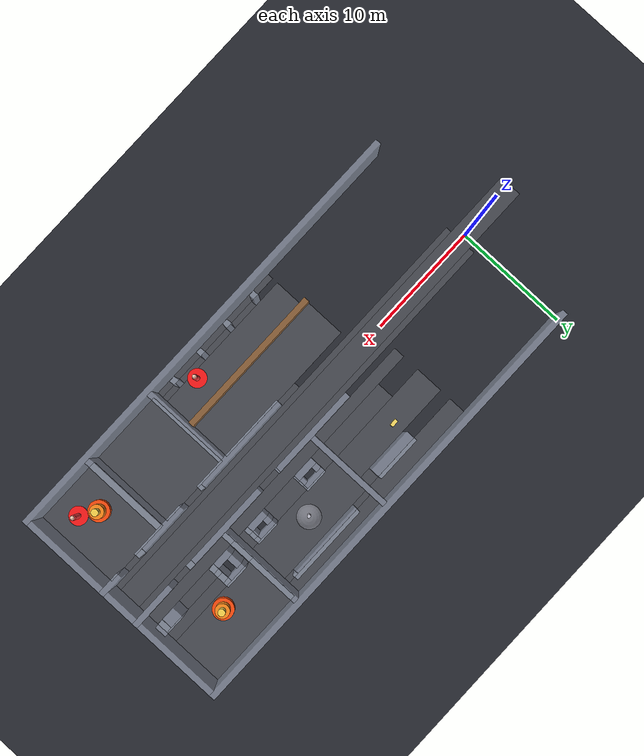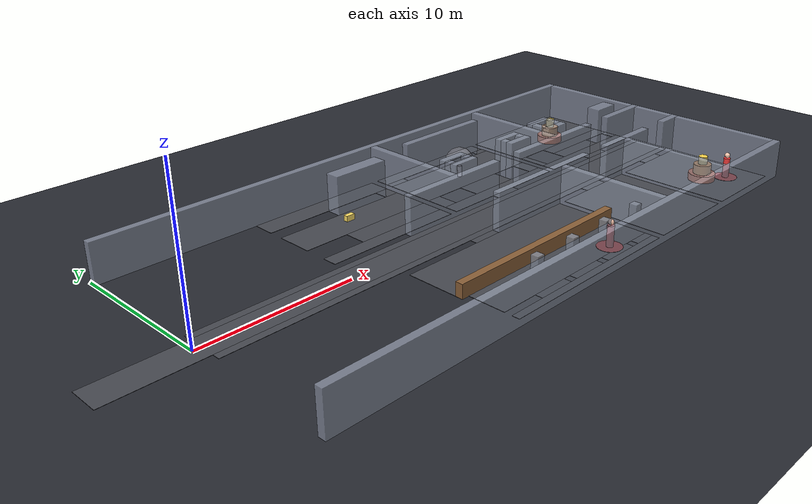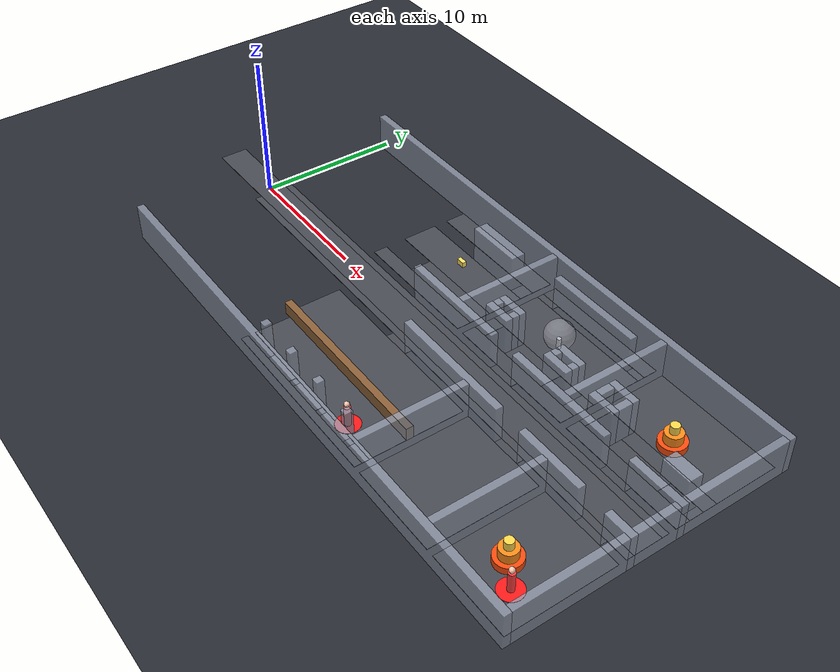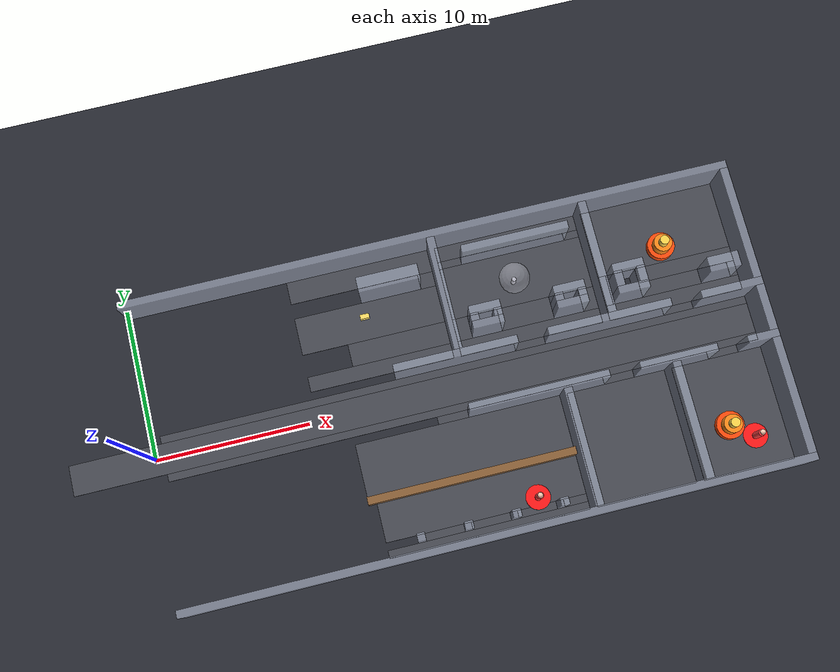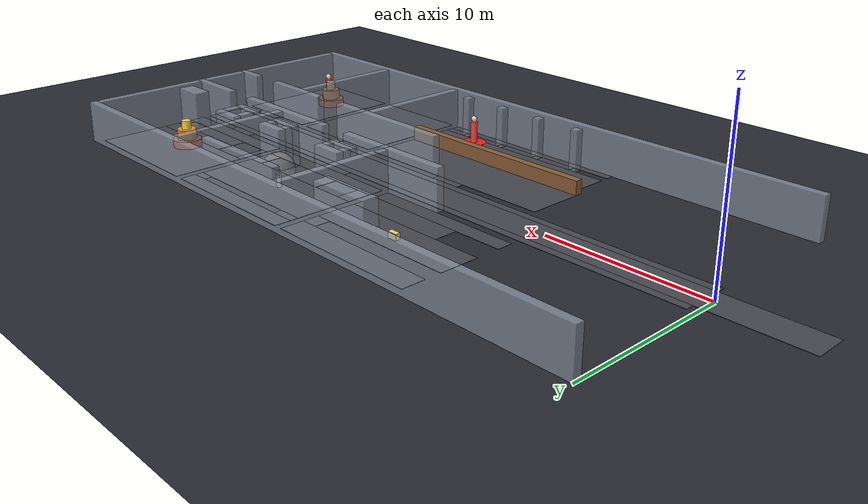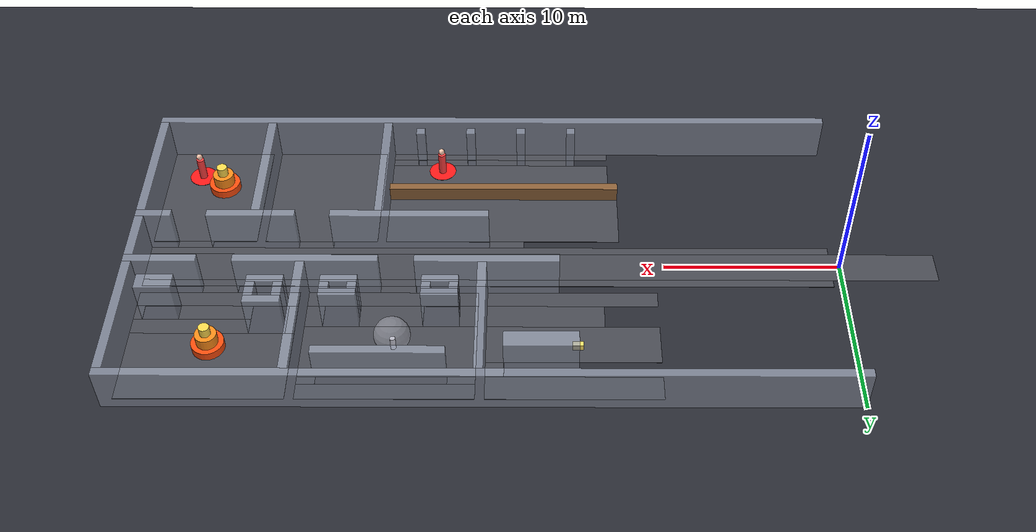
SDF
<sdf version="1.9">
 <world name="living_map_fire">
  <model name="ground">
   <static>true</static>
   <link name="l">
    <collision name="c"><geometry><plane><normal>0 0 1</normal><size>120 80</size></plane></geometry></collision>
    <visual name="v">
     <geometry><plane><normal>0 0 1</normal><size>120 80</size></plane></geometry>
     <material><ambient>0.16 0.17 0.2 1.0</ambient><diffuse>0.16 0.17 0.2 1.0</diffuse></material>
    </visual>
   </link>
  </model>
  <model name="slab0_1">
   <static>true</static>
   <pose>19.500 -9.250 0.010 0 0 0</pose>
   <link name="l">
    <collision name="c"><geometry><box><size>13.000 0.500 0.020</size></box></geometry></collision>
    <visual name="v">
     <geometry><box><size>13.000 0.500 0.020</size></box></geometry>
     <material><ambient>0.28 0.29 0.32 1.0</ambient><diffuse>0.28 0.29 0.32 1.0</diffuse></material>
    </visual>
   </link>
  </model>
  <model name="slab0_2">
   <static>true</static>
   <pose>29.750 -5.750 0.010 0 0 0</pose>
   <link name="l">
    <collision name="c"><geometry><box><size>6.500 7.500 0.020</size></box></geometry></collision>
    <visual name="v">
     <geometry><box><size>6.500 7.500 0.020</size></box></geometry>
     <material><ambient>0.28 0.29 0.32 1.0</ambient><diffuse>0.28 0.29 0.32 1.0</diffuse></material>
    </visual>
   </link>
  </model>
  <model name="slab0_3">
   <static>true</static>
   <pose>36.500 -5.750 0.010 0 0 0</pose>
   <link name="l">
    <collision name="c"><geometry><box><size>6.000 7.500 0.020</size></box></geometry></collision>
    <visual name="v">
     <geometry><box><size>6.000 7.500 0.020</size></box></geometry>
     <material><ambient>0.28 0.29 0.32 1.0</ambient><diffuse>0.28 0.29 0.32 1.0</diffuse></material>
    </visual>
   </link>
  </model>
  <model name="slab0_5">
   <static>true</static>
   <pose>16.750 -8.750 0.010 0 0 0</pose>
   <link name="l">
    <collision name="c"><geometry><box><size>2.500 0.500 0.020</size></box></geometry></collision>
    <visual name="v">
     <geometry><box><size>2.500 0.500 0.020</size></box></geometry>
     <material><ambient>0.28 0.29 0.32 1.0</ambient><diffuse>0.28 0.29 0.32 1.0</diffuse></material>
    </visual>
   </link>
  </model>
  <model name="slab0_6">
   <static>true</static>
   <pose>19.750 -8.750 0.010 0 0 0</pose>
   <link name="l">
    <collision name="c"><geometry><box><size>2.500 0.500 0.020</size></box></geometry></collision>
    <visual name="v">
     <geometry><box><size>2.500 0.500 0.020</size></box></geometry>
     <material><ambient>0.28 0.29 0.32 1.0</ambient><diffuse>0.28 0.29 0.32 1.0</diffuse></material>
    </visual>
   </link>
  </model>
  <model name="slab0_7">
   <static>true</static>
   <pose>22.750 -8.750 0.010 0 0 0</pose>
   <link name="l">
    <collision name="c"><geometry><box><size>2.500 0.500 0.020</size></box></geometry></collision>
    <visual name="v">
     <geometry><box><size>2.500 0.500 0.020</size></box></geometry>
     <material><ambient>0.28 0.29 0.32 1.0</ambient><diffuse>0.28 0.29 0.32 1.0</diffuse></material>
    </visual>
   </link>
  </model>
  <model name="slab0_8">
   <static>true</static>
   <pose>25.250 -8.750 0.010 0 0 0</pose>
   <link name="l">
    <collision name="c"><geometry><box><size>1.500 0.500 0.020</size></box></geometry></collision>
    <visual name="v">
     <geometry><box><size>1.500 0.500 0.020</size></box></geometry>
     <material><ambient>0.28 0.29 0.32 1.0</ambient><diffuse>0.28 0.29 0.32 1.0</diffuse></material>
    </visual>
   </link>
  </model>
  <model name="slab0_12">
   <static>true</static>
   <pose>19.500 -7.250 0.010 0 0 0</pose>
   <link name="l">
    <collision name="c"><geometry><box><size>13.000 2.500 0.020</size></box></geometry></collision>
    <visual name="v">
     <geometry><box><size>13.000 2.500 0.020</size></box></geometry>
     <material><ambient>0.28 0.29 0.32 1.0</ambient><diffuse>0.28 0.29 0.32 1.0</diffuse></material>
    </visual>
   </link>
  </model>
  <model name="slab0_14">
   <static>true</static>
   <pose>19.250 -4.000 0.010 0 0 0</pose>
   <link name="l">
    <collision name="c"><geometry><box><size>13.500 4.000 0.020</size></box></geometry></collision>
    <visual name="v">
     <geometry><box><size>13.500 4.000 0.020</size></box></geometry>
     <material><ambient>0.28 0.29 0.32 1.0</ambient><diffuse>0.28 0.29 0.32 1.0</diffuse></material>
    </visual>
   </link>
  </model>
  <model name="slab0_17">
   <static>true</static>
   <pose>19.000 -1.750 0.010 0 0 0</pose>
   <link name="l">
    <collision name="c"><geometry><box><size>2.000 0.500 0.020</size></box></geometry></collision>
    <visual name="v">
     <geometry><box><size>2.000 0.500 0.020</size></box></geometry>
     <material><ambient>0.28 0.29 0.32 1.0</ambient><diffuse>0.28 0.29 0.32 1.0</diffuse></material>
    </visual>
   </link>
  </model>
  <model name="slab0_18">
   <static>true</static>
   <pose>30.000 -1.750 0.010 0 0 0</pose>
   <link name="l">
    <collision name="c"><geometry><box><size>2.000 0.500 0.020</size></box></geometry></collision>
    <visual name="v">
     <geometry><box><size>2.000 0.500 0.020</size></box></geometry>
     <material><ambient>0.28 0.29 0.32 1.0</ambient><diffuse>0.28 0.29 0.32 1.0</diffuse></material>
    </visual>
   </link>
  </model>
  <model name="slab0_19">
   <static>true</static>
   <pose>37.000 -1.750 0.010 0 0 0</pose>
   <link name="l">
    <collision name="c"><geometry><box><size>2.000 0.500 0.020</size></box></geometry></collision>
    <visual name="v">
     <geometry><box><size>2.000 0.500 0.020</size></box></geometry>
     <material><ambient>0.28 0.29 0.32 1.0</ambient><diffuse>0.28 0.29 0.32 1.0</diffuse></material>
    </visual>
   </link>
  </model>
  <model name="slab0_20">
   <static>true</static>
   <pose>20.000 -1.250 0.010 0 0 0</pose>
   <link name="l">
    <collision name="c"><geometry><box><size>39.000 0.500 0.020</size></box></geometry></collision>
    <visual name="v">
     <geometry><box><size>39.000 0.500 0.020</size></box></geometry>
     <material><ambient>0.28 0.29 0.32 1.0</ambient><diffuse>0.28 0.29 0.32 1.0</diffuse></material>
    </visual>
   </link>
  </model>
  <model name="slab0_21">
   <static>true</static>
   <pose>17.000 0.000 0.010 0 0 0</pose>
   <link name="l">
    <collision name="c"><geometry><box><size>45.000 2.000 0.020</size></box></geometry></collision>
    <visual name="v">
     <geometry><box><size>45.000 2.000 0.020</size></box></geometry>
     <material><ambient>0.28 0.29 0.32 1.0</ambient><diffuse>0.28 0.29 0.32 1.0</diffuse></material>
    </visual>
   </link>
  </model>
  <model name="slab0_23">
   <static>true</static>
   <pose>20.000 1.250 0.010 0 0 0</pose>
   <link name="l">
    <collision name="c"><geometry><box><size>39.000 0.500 0.020</size></box></geometry></collision>
    <visual name="v">
     <geometry><box><size>39.000 0.500 0.020</size></box></geometry>
     <material><ambient>0.28 0.29 0.32 1.0</ambient><diffuse>0.28 0.29 0.32 1.0</diffuse></material>
    </visual>
   </link>
  </model>
  <model name="slab0_26">
   <static>true</static>
   <pose>25.000 1.750 0.010 0 0 0</pose>
   <link name="l">
    <collision name="c"><geometry><box><size>2.000 0.500 0.020</size></box></geometry></collision>
    <visual name="v">
     <geometry><box><size>2.000 0.500 0.020</size></box></geometry>
     <material><ambient>0.28 0.29 0.32 1.0</ambient><diffuse>0.28 0.29 0.32 1.0</diffuse></material>
    </visual>
   </link>
  </model>
  <model name="slab0_27">
   <static>true</static>
   <pose>35.000 1.750 0.010 0 0 0</pose>
   <link name="l">
    <collision name="c"><geometry><box><size>2.000 0.500 0.020</size></box></geometry></collision>
    <visual name="v">
     <geometry><box><size>2.000 0.500 0.020</size></box></geometry>
     <material><ambient>0.28 0.29 0.32 1.0</ambient><diffuse>0.28 0.29 0.32 1.0</diffuse></material>
    </visual>
   </link>
  </model>
  <model name="slab0_29">
   <static>true</static>
   <pose>15.250 2.500 0.010 0 0 0</pose>
   <link name="l">
    <collision name="c"><geometry><box><size>9.500 1.000 0.020</size></box></geometry></collision>
    <visual name="v">
     <geometry><box><size>9.500 1.000 0.020</size></box></geometry>
     <material><ambient>0.28 0.29 0.32 1.0</ambient><diffuse>0.28 0.29 0.32 1.0</diffuse></material>
    </visual>
   </link>
  </model>
  <model name="slab0_30">
   <static>true</static>
   <pose>25.250 2.500 0.010 0 0 0</pose>
   <link name="l">
    <collision name="c"><geometry><box><size>9.500 1.000 0.020</size></box></geometry></collision>
    <visual name="v">
     <geometry><box><size>9.500 1.000 0.020</size></box></geometry>
     <material><ambient>0.28 0.29 0.32 1.0</ambient><diffuse>0.28 0.29 0.32 1.0</diffuse></material>
    </visual>
   </link>
  </model>
  <model name="slab0_31">
   <static>true</static>
   <pose>35.000 2.500 0.010 0 0 0</pose>
   <link name="l">
    <collision name="c"><geometry><box><size>9.000 1.000 0.020</size></box></geometry></collision>
    <visual name="v">
     <geometry><box><size>9.000 1.000 0.020</size></box></geometry>
     <material><ambient>0.28 0.29 0.32 1.0</ambient><diffuse>0.28 0.29 0.32 1.0</diffuse></material>
    </visual>
   </link>
  </model>
  <model name="slab0_36">
   <static>true</static>
   <pose>16.750 3.750 0.010 0 0 0</pose>
   <link name="l">
    <collision name="c"><geometry><box><size>6.500 1.500 0.020</size></box></geometry></collision>
    <visual name="v">
     <geometry><box><size>6.500 1.500 0.020</size></box></geometry>
     <material><ambient>0.28 0.29 0.32 1.0</ambient><diffuse>0.28 0.29 0.32 1.0</diffuse></material>
    </visual>
   </link>
  </model>
  <model name="slab0_37">
   <static>true</static>
   <pose>21.000 3.750 0.010 0 0 0</pose>
   <link name="l">
    <collision name="c"><geometry><box><size>1.000 1.500 0.020</size></box></geometry></collision>
    <visual name="v">
     <geometry><box><size>1.000 1.500 0.020</size></box></geometry>
     <material><ambient>0.28 0.29 0.32 1.0</ambient><diffuse>0.28 0.29 0.32 1.0</diffuse></material>
    </visual>
   </link>
  </model>
  <model name="slab0_38">
   <static>true</static>
   <pose>25.250 3.750 0.010 0 0 0</pose>
   <link name="l">
    <collision name="c"><geometry><box><size>3.500 1.500 0.020</size></box></geometry></collision>
    <visual name="v">
     <geometry><box><size>3.500 1.500 0.020</size></box></geometry>
     <material><ambient>0.28 0.29 0.32 1.0</ambient><diffuse>0.28 0.29 0.32 1.0</diffuse></material>
    </visual>
   </link>
  </model>
  <model name="slab0_39">
   <static>true</static>
   <pose>29.500 3.750 0.010 0 0 0</pose>
   <link name="l">
    <collision name="c"><geometry><box><size>1.000 1.500 0.020</size></box></geometry></collision>
    <visual name="v">
     <geometry><box><size>1.000 1.500 0.020</size></box></geometry>
     <material><ambient>0.28 0.29 0.32 1.0</ambient><diffuse>0.28 0.29 0.32 1.0</diffuse></material>
    </visual>
   </link>
  </model>
  <model name="slab0_40">
   <static>true</static>
   <pose>30.750 4.000 0.010 0 0 0</pose>
   <link name="l">
    <collision name="c"><geometry><box><size>0.500 2.000 0.020</size></box></geometry></collision>
    <visual name="v">
     <geometry><box><size>0.500 2.000 0.020</size></box></geometry>
     <material><ambient>0.28 0.29 0.32 1.0</ambient><diffuse>0.28 0.29 0.32 1.0</diffuse></material>
    </visual>
   </link>
  </model>
  <model name="slab0_41">
   <static>true</static>
   <pose>35.000 3.500 0.010 0 0 0</pose>
   <link name="l">
    <collision name="c"><geometry><box><size>4.000 1.000 0.020</size></box></geometry></collision>
    <visual name="v">
     <geometry><box><size>4.000 1.000 0.020</size></box></geometry>
     <material><ambient>0.28 0.29 0.32 1.0</ambient><diffuse>0.28 0.29 0.32 1.0</diffuse></material>
    </visual>
   </link>
  </model>
  <model name="slab0_42">
   <static>true</static>
   <pose>39.250 3.500 0.010 0 0 0</pose>
   <link name="l">
    <collision name="c"><geometry><box><size>0.500 1.000 0.020</size></box></geometry></collision>
    <visual name="v">
     <geometry><box><size>0.500 1.000 0.020</size></box></geometry>
     <material><ambient>0.28 0.29 0.32 1.0</ambient><diffuse>0.28 0.29 0.32 1.0</diffuse></material>
    </visual>
   </link>
  </model>
  <model name="slab0_43">
   <static>true</static>
   <pose>36.250 4.500 0.010 0 0 0</pose>
   <link name="l">
    <collision name="c"><geometry><box><size>6.500 1.000 0.020</size></box></geometry></collision>
    <visual name="v">
     <geometry><box><size>6.500 1.000 0.020</size></box></geometry>
     <material><ambient>0.28 0.29 0.32 1.0</ambient><diffuse>0.28 0.29 0.32 1.0</diffuse></material>
    </visual>
   </link>
  </model>
  <model name="slab0_44">
   <static>true</static>
   <pose>15.250 5.750 0.010 0 0 0</pose>
   <link name="l">
    <collision name="c"><geometry><box><size>9.500 2.500 0.020</size></box></geometry></collision>
    <visual name="v">
     <geometry><box><size>9.500 2.500 0.020</size></box></geometry>
     <material><ambient>0.28 0.29 0.32 1.0</ambient><diffuse>0.28 0.29 0.32 1.0</diffuse></material>
    </visual>
   </link>
  </model>
  <model name="slab0_45">
   <static>true</static>
   <pose>25.250 6.250 0.010 0 0 0</pose>
   <link name="l">
    <collision name="c"><geometry><box><size>9.500 3.500 0.020</size></box></geometry></collision>
    <visual name="v">
     <geometry><box><size>9.500 3.500 0.020</size></box></geometry>
     <material><ambient>0.28 0.29 0.32 1.0</ambient><diffuse>0.28 0.29 0.32 1.0</diffuse></material>
    </visual>
   </link>
  </model>
  <model name="slab0_46">
   <static>true</static>
   <pose>35.000 7.250 0.010 0 0 0</pose>
   <link name="l">
    <collision name="c"><geometry><box><size>9.000 4.500 0.020</size></box></geometry></collision>
    <visual name="v">
     <geometry><box><size>9.000 4.500 0.020</size></box></geometry>
     <material><ambient>0.28 0.29 0.32 1.0</ambient><diffuse>0.28 0.29 0.32 1.0</diffuse></material>
    </visual>
   </link>
  </model>
  <model name="slab0_49">
   <static>true</static>
   <pose>19.500 7.500 0.010 0 0 0</pose>
   <link name="l">
    <collision name="c"><geometry><box><size>1.000 1.000 0.020</size></box></geometry></collision>
    <visual name="v">
     <geometry><box><size>1.000 1.000 0.020</size></box></geometry>
     <material><ambient>0.28 0.29 0.32 1.0</ambient><diffuse>0.28 0.29 0.32 1.0</diffuse></material>
    </visual>
   </link>
  </model>
  <model name="slab0_52">
   <static>true</static>
   <pose>15.250 8.750 0.010 0 0 0</pose>
   <link name="l">
    <collision name="c"><geometry><box><size>9.500 1.500 0.020</size></box></geometry></collision>
    <visual name="v">
     <geometry><box><size>9.500 1.500 0.020</size></box></geometry>
     <material><ambient>0.28 0.29 0.32 1.0</ambient><diffuse>0.28 0.29 0.32 1.0</diffuse></material>
    </visual>
   </link>
  </model>
  <model name="slab0_53">
   <static>true</static>
   <pose>21.250 8.250 0.010 0 0 0</pose>
   <link name="l">
    <collision name="c"><geometry><box><size>1.500 0.500 0.020</size></box></geometry></collision>
    <visual name="v">
     <geometry><box><size>1.500 0.500 0.020</size></box></geometry>
     <material><ambient>0.28 0.29 0.32 1.0</ambient><diffuse>0.28 0.29 0.32 1.0</diffuse></material>
    </visual>
   </link>
  </model>
  <model name="slab0_54">
   <static>true</static>
   <pose>29.500 8.250 0.010 0 0 0</pose>
   <link name="l">
    <collision name="c"><geometry><box><size>1.000 0.500 0.020</size></box></geometry></collision>
    <visual name="v">
     <geometry><box><size>1.000 0.500 0.020</size></box></geometry>
     <material><ambient>0.28 0.29 0.32 1.0</ambient><diffuse>0.28 0.29 0.32 1.0</diffuse></material>
    </visual>
   </link>
  </model>
  <model name="slab0_56">
   <static>true</static>
   <pose>25.250 9.000 0.010 0 0 0</pose>
   <link name="l">
    <collision name="c"><geometry><box><size>9.500 1.000 0.020</size></box></geometry></collision>
    <visual name="v">
     <geometry><box><size>9.500 1.000 0.020</size></box></geometry>
     <material><ambient>0.28 0.29 0.32 1.0</ambient><diffuse>0.28 0.29 0.32 1.0</diffuse></material>
    </visual>
   </link>
  </model>
  <model name="wall0_0">
   <static>true</static>
   <pose>20.000 -9.750 1.300 0 0 0</pose>
   <link name="l">
    <collision name="c"><geometry><box><size>40.000 0.500 2.600</size></box></geometry></collision>
    <visual name="v">
     <geometry><box><size>40.000 0.500 2.600</size></box></geometry>
     <material><ambient>0.62 0.65 0.72 0.75</ambient><diffuse>0.62 0.65 0.72 0.75</diffuse></material>
    </visual>
   </link>
  </model>
  <model name="wall0_3">
   <static>true</static>
   <pose>26.250 -5.750 1.300 0 0 0</pose>
   <link name="l">
    <collision name="c"><geometry><box><size>0.500 7.500 2.600</size></box></geometry></collision>
    <visual name="v">
     <geometry><box><size>0.500 7.500 2.600</size></box></geometry>
     <material><ambient>0.62 0.65 0.72 0.75</ambient><diffuse>0.62 0.65 0.72 0.75</diffuse></material>
    </visual>
   </link>
  </model>
  <model name="wall0_4">
   <static>true</static>
   <pose>33.250 -5.750 1.300 0 0 0</pose>
   <link name="l">
    <collision name="c"><geometry><box><size>0.500 7.500 2.600</size></box></geometry></collision>
    <visual name="v">
     <geometry><box><size>0.500 7.500 2.600</size></box></geometry>
     <material><ambient>0.62 0.65 0.72 0.75</ambient><diffuse>0.62 0.65 0.72 0.75</diffuse></material>
    </visual>
   </link>
  </model>
  <model name="wall0_5">
   <static>true</static>
   <pose>39.750 -5.750 1.300 0 0 0</pose>
   <link name="l">
    <collision name="c"><geometry><box><size>0.500 7.500 2.600</size></box></geometry></collision>
    <visual name="v">
     <geometry><box><size>0.500 7.500 2.600</size></box></geometry>
     <material><ambient>0.62 0.65 0.72 0.75</ambient><diffuse>0.62 0.65 0.72 0.75</diffuse></material>
    </visual>
   </link>
  </model>
  <model name="wall0_6">
   <static>true</static>
   <pose>15.250 -8.750 1.300 0 0 0</pose>
   <link name="l">
    <collision name="c"><geometry><box><size>0.500 0.500 2.600</size></box></geometry></collision>
    <visual name="v">
     <geometry><box><size>0.500 0.500 2.600</size></box></geometry>
     <material><ambient>0.62 0.65 0.72 0.75</ambient><diffuse>0.62 0.65 0.72 0.75</diffuse></material>
    </visual>
   </link>
  </model>
  <model name="wall0_7">
   <static>true</static>
   <pose>18.250 -8.750 1.300 0 0 0</pose>
   <link name="l">
    <collision name="c"><geometry><box><size>0.500 0.500 2.600</size></box></geometry></collision>
    <visual name="v">
     <geometry><box><size>0.500 0.500 2.600</size></box></geometry>
     <material><ambient>0.62 0.65 0.72 0.75</ambient><diffuse>0.62 0.65 0.72 0.75</diffuse></material>
    </visual>
   </link>
  </model>
  <model name="wall0_8">
   <static>true</static>
   <pose>21.250 -8.750 1.300 0 0 0</pose>
   <link name="l">
    <collision name="c"><geometry><box><size>0.500 0.500 2.600</size></box></geometry></collision>
    <visual name="v">
     <geometry><box><size>0.500 0.500 2.600</size></box></geometry>
     <material><ambient>0.62 0.65 0.72 0.75</ambient><diffuse>0.62 0.65 0.72 0.75</diffuse></material>
    </visual>
   </link>
  </model>
  <model name="wall0_9">
   <static>true</static>
   <pose>24.250 -8.750 1.300 0 0 0</pose>
   <link name="l">
    <collision name="c"><geometry><box><size>0.500 0.500 2.600</size></box></geometry></collision>
    <visual name="v">
     <geometry><box><size>0.500 0.500 2.600</size></box></geometry>
     <material><ambient>0.62 0.65 0.72 0.75</ambient><diffuse>0.62 0.65 0.72 0.75</diffuse></material>
    </visual>
   </link>
  </model>
  <model name="wall0_18">
   <static>true</static>
   <pose>24.500 -1.750 1.300 0 0 0</pose>
   <link name="l">
    <collision name="c"><geometry><box><size>9.000 0.500 2.600</size></box></geometry></collision>
    <visual name="v">
     <geometry><box><size>9.000 0.500 2.600</size></box></geometry>
     <material><ambient>0.62 0.65 0.72 0.75</ambient><diffuse>0.62 0.65 0.72 0.75</diffuse></material>
    </visual>
   </link>
  </model>
  <model name="wall0_19">
   <static>true</static>
   <pose>33.500 -1.750 1.300 0 0 0</pose>
   <link name="l">
    <collision name="c"><geometry><box><size>5.000 0.500 2.600</size></box></geometry></collision>
    <visual name="v">
     <geometry><box><size>5.000 0.500 2.600</size></box></geometry>
     <material><ambient>0.62 0.65 0.72 0.75</ambient><diffuse>0.62 0.65 0.72 0.75</diffuse></material>
    </visual>
   </link>
  </model>
  <model name="wall0_20">
   <static>true</static>
   <pose>39.000 -1.750 1.300 0 0 0</pose>
   <link name="l">
    <collision name="c"><geometry><box><size>2.000 0.500 2.600</size></box></geometry></collision>
    <visual name="v">
     <geometry><box><size>2.000 0.500 2.600</size></box></geometry>
     <material><ambient>0.62 0.65 0.72 0.75</ambient><diffuse>0.62 0.65 0.72 0.75</diffuse></material>
    </visual>
   </link>
  </model>
  <model name="wall0_22">
   <static>true</static>
   <pose>39.750 0.000 1.300 0 0 0</pose>
   <link name="l">
    <collision name="c"><geometry><box><size>0.500 3.000 2.600</size></box></geometry></collision>
    <visual name="v">
     <geometry><box><size>0.500 3.000 2.600</size></box></geometry>
     <material><ambient>0.62 0.65 0.72 0.75</ambient><diffuse>0.62 0.65 0.72 0.75</diffuse></material>
    </visual>
   </link>
  </model>
  <model name="wall0_26">
   <static>true</static>
   <pose>20.000 1.750 1.300 0 0 0</pose>
   <link name="l">
    <collision name="c"><geometry><box><size>8.000 0.500 2.600</size></box></geometry></collision>
    <visual name="v">
     <geometry><box><size>8.000 0.500 2.600</size></box></geometry>
     <material><ambient>0.62 0.65 0.72 0.75</ambient><diffuse>0.62 0.65 0.72 0.75</diffuse></material>
    </visual>
   </link>
  </model>
  <model name="wall0_27">
   <static>true</static>
   <pose>30.000 1.750 1.300 0 0 0</pose>
   <link name="l">
    <collision name="c"><geometry><box><size>8.000 0.500 2.600</size></box></geometry></collision>
    <visual name="v">
     <geometry><box><size>8.000 0.500 2.600</size></box></geometry>
     <material><ambient>0.62 0.65 0.72 0.75</ambient><diffuse>0.62 0.65 0.72 0.75</diffuse></material>
    </visual>
   </link>
  </model>
  <model name="wall0_28">
   <static>true</static>
   <pose>38.000 1.750 1.300 0 0 0</pose>
   <link name="l">
    <collision name="c"><geometry><box><size>4.000 0.500 2.600</size></box></geometry></collision>
    <visual name="v">
     <geometry><box><size>4.000 0.500 2.600</size></box></geometry>
     <material><ambient>0.62 0.65 0.72 0.75</ambient><diffuse>0.62 0.65 0.72 0.75</diffuse></material>
    </visual>
   </link>
  </model>
  <model name="wall0_31">
   <static>true</static>
   <pose>20.250 5.750 1.300 0 0 0</pose>
   <link name="l">
    <collision name="c"><geometry><box><size>0.500 7.500 2.600</size></box></geometry></collision>
    <visual name="v">
     <geometry><box><size>0.500 7.500 2.600</size></box></geometry>
     <material><ambient>0.62 0.65 0.72 0.75</ambient><diffuse>0.62 0.65 0.72 0.75</diffuse></material>
    </visual>
   </link>
  </model>
  <model name="wall0_32">
   <static>true</static>
   <pose>30.250 5.750 1.300 0 0 0</pose>
   <link name="l">
    <collision name="c"><geometry><box><size>0.500 7.500 2.600</size></box></geometry></collision>
    <visual name="v">
     <geometry><box><size>0.500 7.500 2.600</size></box></geometry>
     <material><ambient>0.62 0.65 0.72 0.75</ambient><diffuse>0.62 0.65 0.72 0.75</diffuse></material>
    </visual>
   </link>
  </model>
  <model name="wall0_33">
   <static>true</static>
   <pose>39.750 5.750 1.300 0 0 0</pose>
   <link name="l">
    <collision name="c"><geometry><box><size>0.500 7.500 2.600</size></box></geometry></collision>
    <visual name="v">
     <geometry><box><size>0.500 7.500 2.600</size></box></geometry>
     <material><ambient>0.62 0.65 0.72 0.75</ambient><diffuse>0.62 0.65 0.72 0.75</diffuse></material>
    </visual>
   </link>
  </model>
  <model name="wall0_37">
   <static>true</static>
   <pose>22.500 3.250 1.300 0 0 0</pose>
   <link name="l">
    <collision name="c"><geometry><box><size>2.000 0.500 2.600</size></box></geometry></collision>
    <visual name="v">
     <geometry><box><size>2.000 0.500 2.600</size></box></geometry>
     <material><ambient>0.62 0.65 0.72 0.75</ambient><diffuse>0.62 0.65 0.72 0.75</diffuse></material>
    </visual>
   </link>
  </model>
  <model name="wall0_38">
   <static>true</static>
   <pose>28.000 3.250 1.300 0 0 0</pose>
   <link name="l">
    <collision name="c"><geometry><box><size>2.000 0.500 2.600</size></box></geometry></collision>
    <visual name="v">
     <geometry><box><size>2.000 0.500 2.600</size></box></geometry>
     <material><ambient>0.62 0.65 0.72 0.75</ambient><diffuse>0.62 0.65 0.72 0.75</diffuse></material>
    </visual>
   </link>
  </model>
  <model name="wall0_39">
   <static>true</static>
   <pose>32.000 3.250 1.300 0 0 0</pose>
   <link name="l">
    <collision name="c"><geometry><box><size>2.000 0.500 2.600</size></box></geometry></collision>
    <visual name="v">
     <geometry><box><size>2.000 0.500 2.600</size></box></geometry>
     <material><ambient>0.62 0.65 0.72 0.75</ambient><diffuse>0.62 0.65 0.72 0.75</diffuse></material>
    </visual>
   </link>
  </model>
  <model name="wall0_40">
   <static>true</static>
   <pose>38.000 3.500 1.300 0 0 0</pose>
   <link name="l">
    <collision name="c"><geometry><box><size>2.000 1.000 2.600</size></box></geometry></collision>
    <visual name="v">
     <geometry><box><size>2.000 1.000 2.600</size></box></geometry>
     <material><ambient>0.62 0.65 0.72 0.75</ambient><diffuse>0.62 0.65 0.72 0.75</diffuse></material>
    </visual>
   </link>
  </model>
  <model name="wall0_43">
   <static>true</static>
   <pose>21.750 3.750 1.300 0 0 0</pose>
   <link name="l">
    <collision name="c"><geometry><box><size>0.500 0.500 2.600</size></box></geometry></collision>
    <visual name="v">
     <geometry><box><size>0.500 0.500 2.600</size></box></geometry>
     <material><ambient>0.62 0.65 0.72 0.75</ambient><diffuse>0.62 0.65 0.72 0.75</diffuse></material>
    </visual>
   </link>
  </model>
  <model name="wall0_44">
   <static>true</static>
   <pose>23.250 3.750 1.300 0 0 0</pose>
   <link name="l">
    <collision name="c"><geometry><box><size>0.500 0.500 2.600</size></box></geometry></collision>
    <visual name="v">
     <geometry><box><size>0.500 0.500 2.600</size></box></geometry>
     <material><ambient>0.62 0.65 0.72 0.75</ambient><diffuse>0.62 0.65 0.72 0.75</diffuse></material>
    </visual>
   </link>
  </model>
  <model name="wall0_45">
   <static>true</static>
   <pose>27.250 3.750 1.300 0 0 0</pose>
   <link name="l">
    <collision name="c"><geometry><box><size>0.500 0.500 2.600</size></box></geometry></collision>
    <visual name="v">
     <geometry><box><size>0.500 0.500 2.600</size></box></geometry>
     <material><ambient>0.62 0.65 0.72 0.75</ambient><diffuse>0.62 0.65 0.72 0.75</diffuse></material>
    </visual>
   </link>
  </model>
  <model name="wall0_46">
   <static>true</static>
   <pose>28.750 3.750 1.300 0 0 0</pose>
   <link name="l">
    <collision name="c"><geometry><box><size>0.500 0.500 2.600</size></box></geometry></collision>
    <visual name="v">
     <geometry><box><size>0.500 0.500 2.600</size></box></geometry>
     <material><ambient>0.62 0.65 0.72 0.75</ambient><diffuse>0.62 0.65 0.72 0.75</diffuse></material>
    </visual>
   </link>
  </model>
  <model name="wall0_47">
   <static>true</static>
   <pose>31.250 4.000 1.300 0 0 0</pose>
   <link name="l">
    <collision name="c"><geometry><box><size>0.500 1.000 2.600</size></box></geometry></collision>
    <visual name="v">
     <geometry><box><size>0.500 1.000 2.600</size></box></geometry>
     <material><ambient>0.62 0.65 0.72 0.75</ambient><diffuse>0.62 0.65 0.72 0.75</diffuse></material>
    </visual>
   </link>
  </model>
  <model name="wall0_48">
   <static>true</static>
   <pose>32.750 4.000 1.300 0 0 0</pose>
   <link name="l">
    <collision name="c"><geometry><box><size>0.500 1.000 2.600</size></box></geometry></collision>
    <visual name="v">
     <geometry><box><size>0.500 1.000 2.600</size></box></geometry>
     <material><ambient>0.62 0.65 0.72 0.75</ambient><diffuse>0.62 0.65 0.72 0.75</diffuse></material>
    </visual>
   </link>
  </model>
  <model name="wall0_50">
   <static>true</static>
   <pose>22.500 4.250 1.300 0 0 0</pose>
   <link name="l">
    <collision name="c"><geometry><box><size>2.000 0.500 2.600</size></box></geometry></collision>
    <visual name="v">
     <geometry><box><size>2.000 0.500 2.600</size></box></geometry>
     <material><ambient>0.62 0.65 0.72 0.75</ambient><diffuse>0.62 0.65 0.72 0.75</diffuse></material>
    </visual>
   </link>
  </model>
  <model name="wall0_51">
   <static>true</static>
   <pose>28.000 4.250 1.300 0 0 0</pose>
   <link name="l">
    <collision name="c"><geometry><box><size>2.000 0.500 2.600</size></box></geometry></collision>
    <visual name="v">
     <geometry><box><size>2.000 0.500 2.600</size></box></geometry>
     <material><ambient>0.62 0.65 0.72 0.75</ambient><diffuse>0.62 0.65 0.72 0.75</diffuse></material>
    </visual>
   </link>
  </model>
  <model name="wall0_52">
   <static>true</static>
   <pose>32.000 4.750 1.300 0 0 0</pose>
   <link name="l">
    <collision name="c"><geometry><box><size>2.000 0.500 2.600</size></box></geometry></collision>
    <visual name="v">
     <geometry><box><size>2.000 0.500 2.600</size></box></geometry>
     <material><ambient>0.62 0.65 0.72 0.75</ambient><diffuse>0.62 0.65 0.72 0.75</diffuse></material>
    </visual>
   </link>
  </model>
  <model name="wall0_55">
   <static>true</static>
   <pose>17.000 7.500 1.300 0 0 0</pose>
   <link name="l">
    <collision name="c"><geometry><box><size>4.000 1.000 2.600</size></box></geometry></collision>
    <visual name="v">
     <geometry><box><size>4.000 1.000 2.600</size></box></geometry>
     <material><ambient>0.62 0.65 0.72 0.75</ambient><diffuse>0.62 0.65 0.72 0.75</diffuse></material>
    </visual>
   </link>
  </model>
  <model name="wall0_57">
   <static>true</static>
   <pose>25.500 8.250 1.300 0 0 0</pose>
   <link name="l">
    <collision name="c"><geometry><box><size>7.000 0.500 2.600</size></box></geometry></collision>
    <visual name="v">
     <geometry><box><size>7.000 0.500 2.600</size></box></geometry>
     <material><ambient>0.62 0.65 0.72 0.75</ambient><diffuse>0.62 0.65 0.72 0.75</diffuse></material>
    </visual>
   </link>
  </model>
  <model name="wall0_58">
   <static>true</static>
   <pose>20.000 9.750 1.300 0 0 0</pose>
   <link name="l">
    <collision name="c"><geometry><box><size>40.000 0.500 2.600</size></box></geometry></collision>
    <visual name="v">
     <geometry><box><size>40.000 0.500 2.600</size></box></geometry>
     <material><ambient>0.62 0.65 0.72 0.75</ambient><diffuse>0.62 0.65 0.72 0.75</diffuse></material>
    </visual>
   </link>
  </model>
  <model name="rubble0_0">
   <static>true</static>
   <pose>19.250 -5.750 0.450 0 0 0</pose>
   <link name="l">
    <collision name="c"><geometry><box><size>13.500 0.500 0.900</size></box></geometry></collision>
    <visual name="v">
     <geometry><box><size>13.500 0.500 0.900</size></box></geometry>
     <material><ambient>0.55 0.38 0.22 1.0</ambient><diffuse>0.55 0.38 0.22 1.0</diffuse></material>
    </visual>
   </link>
  </model>
  <model name="fire_0">
   <static>false</static>
   <pose>35.0 6.0 0.0 0 0 0</pose>
   <link name="l">
    <gravity>false</gravity>
    <inertial><mass>1</mass><inertia><ixx>0.1</ixx><iyy>0.1</iyy><izz>0.1</izz></inertia></inertial>
    <visual name="a">
     <pose>0 0 0.25 0 0 0</pose>
     <geometry><cylinder><radius>0.9</radius><length>0.5</length></cylinder></geometry>
     <material>
      <ambient>1 0.3 0.05 1.0</ambient>
      <diffuse>1 0.3 0.05 1.0</diffuse>
      <emissive>1 0.35 0.05 1</emissive>
     </material>
    </visual>
    <visual name="b">
     <pose>0 0 0.7 0 0 0</pose>
     <geometry><cylinder><radius>0.6</radius><length>0.9</length></cylinder></geometry>
     <material>
      <ambient>1 0.55 0.1 1.0</ambient>
      <diffuse>1 0.55 0.1 1.0</diffuse>
      <emissive>1 0.6 0.1 1</emissive>
     </material>
    </visual>
    <visual name="c">
     <pose>0 0 1.2 0 0 0</pose>
     <geometry><cylinder><radius>0.3</radius><length>1.0</length></cylinder></geometry>
     <material>
      <ambient>1 0.85 0.3 1.0</ambient>
      <diffuse>1 0.85 0.3 1.0</diffuse>
      <emissive>1 0.9 0.4 1</emissive>
     </material>
    </visual>
    <light type="point" name="fl0">
     <pose>0 0 1.2 0 0 0</pose>
     <diffuse>1 0.45 0.1 1</diffuse>
     <specular>1 0.4 0.1 1</specular>
     <attenuation>
      <range>9</range>
      <constant>0.3</constant>
      <linear>0.15</linear>
      <quadratic>0.03</quadratic>
     </attenuation>
     <cast_shadows>false</cast_shadows>
    </light>
   </link>
  </model>
  <model name="fire_1">
   <static>false</static>
   <pose>36.0 -6.5 0.0 0 0 0</pose>
   <link name="l">
    <gravity>false</gravity>
    <inertial><mass>1</mass><inertia><ixx>0.1</ixx><iyy>0.1</iyy><izz>0.1</izz></inertia></inertial>
    <visual name="a">
     <pose>0 0 0.25 0 0 0</pose>
     <geometry><cylinder><radius>0.9</radius><length>0.5</length></cylinder></geometry>
     <material>
      <ambient>1 0.3 0.05 1.0</ambient>
      <diffuse>1 0.3 0.05 1.0</diffuse>
      <emissive>1 0.35 0.05 1</emissive>
     </material>
    </visual>
    <visual name="b">
     <pose>0 0 0.7 0 0 0</pose>
     <geometry><cylinder><radius>0.6</radius><length>0.9</length></cylinder></geometry>
     <material>
      <ambient>1 0.55 0.1 1.0</ambient>
      <diffuse>1 0.55 0.1 1.0</diffuse>
      <emissive>1 0.6 0.1 1</emissive>
     </material>
    </visual>
    <visual name="c">
     <pose>0 0 1.2 0 0 0</pose>
     <geometry><cylinder><radius>0.3</radius><length>1.0</length></cylinder></geometry>
     <material>
      <ambient>1 0.85 0.3 1.0</ambient>
      <diffuse>1 0.85 0.3 1.0</diffuse>
      <emissive>1 0.9 0.4 1</emissive>
     </material>
    </visual>
    <light type="point" name="fl1">
     <pose>0 0 1.2 0 0 0</pose>
     <diffuse>1 0.45 0.1 1</diffuse>
     <specular>1 0.4 0.1 1</specular>
     <attenuation>
      <range>9</range>
      <constant>0.3</constant>
      <linear>0.15</linear>
      <quadratic>0.03</quadratic>
     </attenuation>
     <cast_shadows>false</cast_shadows>
    </light>
   </link>
  </model>
  <model name="steam_pipe_0">
   <static>true</static>
   <pose>25.000 6.000 0.400 0 0 0</pose>
   <link name="l">
    <visual name="v">
     <geometry><cylinder><radius>0.15</radius><length>0.8</length></cylinder></geometry>
     <material><ambient>0.7 0.7 0.75 1.0</ambient><diffuse>0.7 0.7 0.75 1.0</diffuse></material>
    </visual>
   </link>
  </model>
  <model name="steam_cloud_0">
   <static>true</static>
   <pose>25.000 6.000 1.100 0 0 0</pose>
   <link name="l">
    <visual name="v">
     <geometry><sphere><radius>1.0</radius></sphere></geometry>
     <material><ambient>0.95 0.95 1 0.4</ambient><diffuse>0.95 0.95 1 0.4</diffuse></material>
     <transparency>0.7</transparency>
    </visual>
   </link>
  </model>
  <model name="person_0">
   <static>false</static>
   <pose>37.5 -7.5 0.0 0 0 0</pose>
   <link name="l">
    <gravity>false</gravity>
    <inertial><mass>1</mass><inertia><ixx>0.1</ixx><iyy>0.1</iyy><izz>0.1</izz></inertia></inertial>
    <visual name="body">
     <pose>0 0 0.7 0 0 0</pose>
     <geometry><cylinder><radius>0.22</radius><length>1.4</length></cylinder></geometry>
     <material><ambient>1 0.25 0.25 1.0</ambient><diffuse>1 0.25 0.25 1.0</diffuse></material>
    </visual>
    <visual name="head">
     <pose>0 0 1.6 0 0 0</pose>
     <geometry><sphere><radius>0.18</radius></sphere></geometry>
     <material><ambient>1 0.8 0.7 1.0</ambient><diffuse>1 0.8 0.7 1.0</diffuse></material>
    </visual>
    <visual name="ring">
     <pose>0 0 0.02 0 0 0</pose>
     <geometry><cylinder><radius>0.8</radius><length>0.03</length></cylinder></geometry>
     <material>
      <ambient>1 0.1 0.1 1.0</ambient>
      <diffuse>1 0.1 0.1 1.0</diffuse>
      <emissive>0.6 0 0 1</emissive>
     </material>
    </visual>
   </link>
  </model>
  <model name="person_1">
   <static>false</static>
   <pose>23.0 -8.0 0.0 0 0 0</pose>
   <link name="l">
    <gravity>false</gravity>
    <inertial><mass>1</mass><inertia><ixx>0.1</ixx><iyy>0.1</iyy><izz>0.1</izz></inertia></inertial>
    <visual name="body">
     <pose>0 0 0.7 0 0 0</pose>
     <geometry><cylinder><radius>0.22</radius><length>1.4</length></cylinder></geometry>
     <material><ambient>1 0.25 0.25 1.0</ambient><diffuse>1 0.25 0.25 1.0</diffuse></material>
    </visual>
    <visual name="head">
     <pose>0 0 1.6 0 0 0</pose>
     <geometry><sphere><radius>0.18</radius></sphere></geometry>
     <material><ambient>1 0.8 0.7 1.0</ambient><diffuse>1 0.8 0.7 1.0</diffuse></material>
    </visual>
    <visual name="ring">
     <pose>0 0 0.02 0 0 0</pose>
     <geometry><cylinder><radius>0.8</radius><length>0.03</length></cylinder></geometry>
     <material>
      <ambient>1 0.1 0.1 1.0</ambient>
      <diffuse>1 0.1 0.1 1.0</diffuse>
      <emissive>0.6 0 0 1</emissive>
     </material>
    </visual>
   </link>
  </model>
  <model name="animal_0">
   <static>false</static>
   <pose>15.0 6.0 0.2 0 0 0</pose>
   <link name="l">
    <gravity>false</gravity>
    <inertial><mass>1</mass><inertia><ixx>0.1</ixx><iyy>0.1</iyy><izz>0.1</izz></inertia></inertial>
    <visual name="b">
     <geometry><box><size>0.6 0.3 0.4</size></box></geometry>
     <material><ambient>1 0.88 0.4 1.0</ambient><diffuse>1 0.88 0.4 1.0</diffuse></material>
    </visual>
   </link>
  </model>
 </world>
</sdf>
